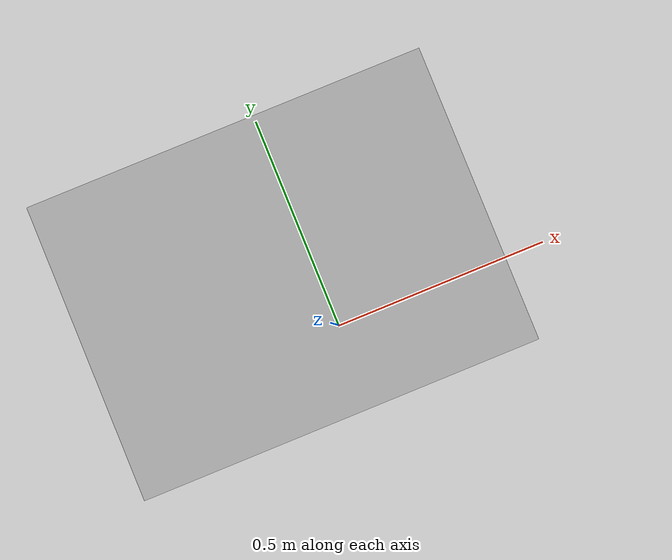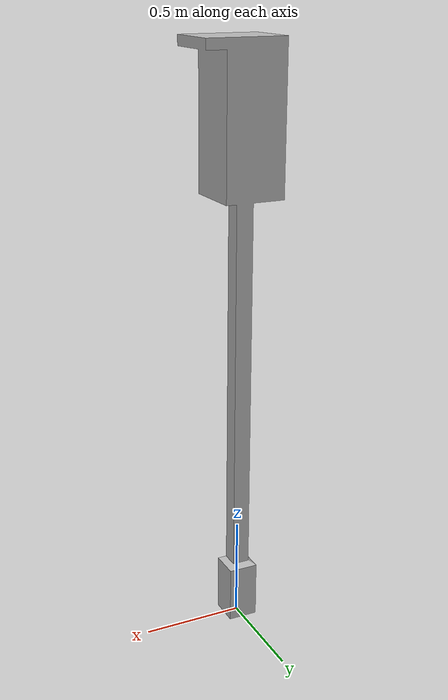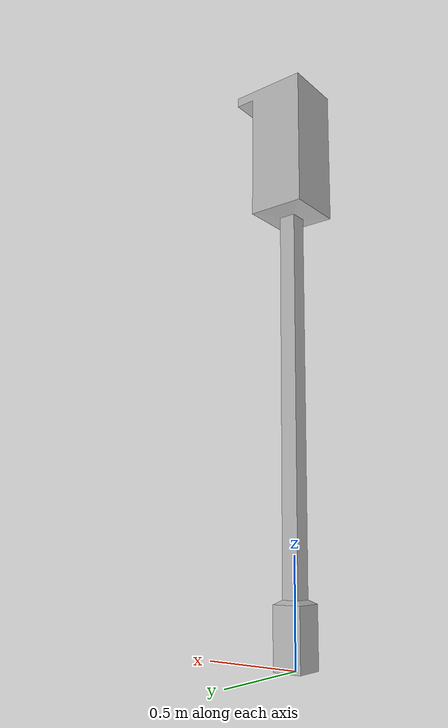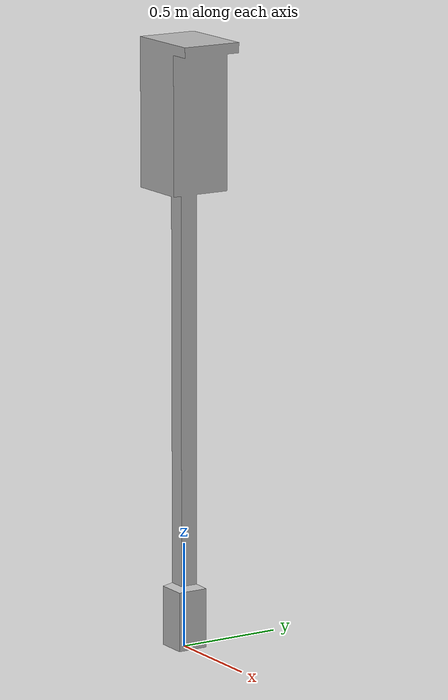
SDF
<?xml version='1.0'?>
<sdf version='1.6'>
    <model name='winsum_trafficlight1_1'>
        <link name='link_0'>
            <pose frame=''>0 0 0 0 -0 0</pose>
            <visual name='visual'>
                <pose frame=''>0 0 0 0 -0 0</pose>
                <geometry>
                    <mesh>
                        <uri>model://winsum_trafficlight1_1/meshes/trafficlight_1_1.dae</uri>
                        <scale>1 1 1</scale>
                    </mesh>
                </geometry>
            </visual>
            <collision name='collision'>
                <pose frame=''>0 0 0 0 -0 0</pose>
                <geometry>
                    <mesh>
                        <uri>model://winsum_trafficlight1_1/meshes/trafficlight_1_1.dae</uri>
                        <scale>1 1 1</scale>
                    </mesh>
                </geometry>
            </collision>
        </link>
    <static>1</static>
    <allow_auto_disable>1</allow_auto_disable>
    </model>
</sdf>
